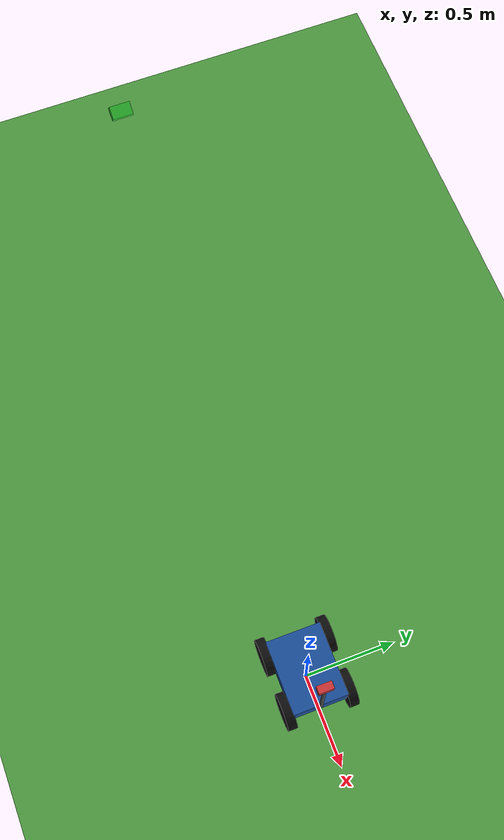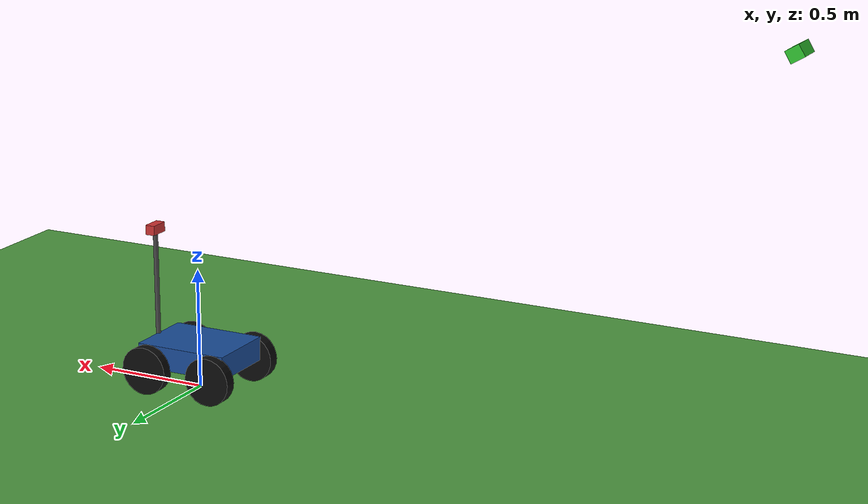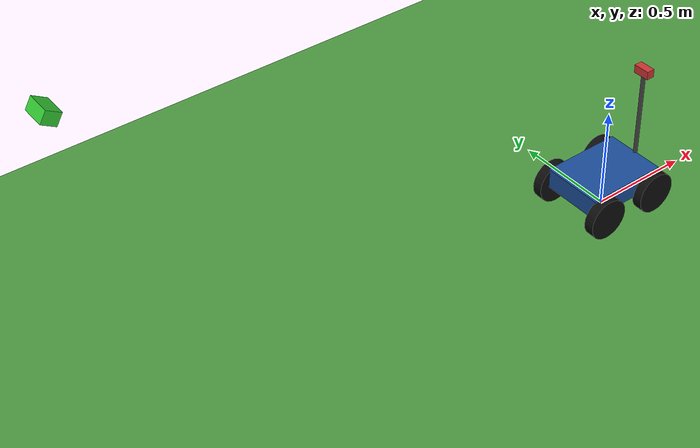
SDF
<?xml version="1.0" ?>
<sdf version="1.6">
  <world name="default">
    <gui>
      <camera name="user_camera">
        <pose>-5 0 1 0 0.2 0</pose>
      </camera>
    </gui>
    <physics type="ode">
      <ode>
        <solver>
          <type>quick</type>
          <iters>100</iters>
          <sor>1.0</sor>
        </solver>
        <constraints>
          <cfm>0.0</cfm>
          <erp>0.2</erp>
          <contact_max_correcting_vel>100.0</contact_max_correcting_vel>
          <contact_surface_layer>0.001</contact_surface_layer>
        </constraints>
      </ode>
      <real_time_update_rate>1000</real_time_update_rate>
    </physics>
    <gravity>0 0 -9.8</gravity>
    <include>
      <uri>model://sun</uri>
    </include>

    <model name="ground_plane">
      <static>true</static>
      <link name="link">
        <collision name="collision">
          <geometry>
            <plane>
              <normal>0 0 1</normal>
              <size>100 100</size>
            </plane>
          </geometry>
          <surface>
            <contact>
              <collide_bitmask>0xffff</collide_bitmask>
            </contact>
            <friction>
              <ode>
                <mu>100</mu>
                <mu2>50</mu2>
              </ode>
            </friction>
          </surface>
        </collision>
        <visual name="visual">
          <cast_shadows>false</cast_shadows>
          <geometry>
            <plane>
              <normal>0 0 1</normal>
              <size>100 100</size>
            </plane>
          </geometry>
          <material>
            <script>
              <uri>file://media/materials/scripts/gazebo.material</uri>
              <name>Gazebo/Grass</name>
            </script>
          </material>
        </visual>
      </link>
    </model>

    <model name="generic_rover_demo">
      <include>
        <uri>model://generic_rover</uri>
      </include>
    </model>

  </world>
</sdf>

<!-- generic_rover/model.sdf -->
<sdf version="1.6">
  <model name="generic_rover">

    <link name="base_link">
      <pose>0 0 0.15 0 0 0</pose>
      <inertial>
        <mass>5.0</mass>
        <inertia>
          <ixx>0.0417</ixx>
          <ixy>0</ixy>
          <ixz>0</ixz>
          <iyy>0.0708</iyy>
          <iyz>0</iyz>
          <izz>0.1042</izz>
        </inertia>
      </inertial>
      <collision name="base_collision">
        <geometry>
          <box>
            <size>0.4 0.3 0.1</size>
          </box>
        </geometry>
      </collision>
      <visual name="base_visual">
        <geometry>
          <box>
            <size>0.4 0.3 0.1</size>
          </box>
        </geometry>
        <material>
          <ambient>0.1 0.3 0.6 1</ambient>
          <diffuse>0.1 0.3 0.6 1</diffuse>
        </material>
      </visual>
      <!-- Camera mast (visual only) up to the camera_link offset. -->
      <visual name="camera_mast_visual">
        <pose>0.2 0 0.25 0 0 0</pose>
        <geometry>
          <cylinder>
            <radius>0.01</radius>
            <length>0.45</length>
          </cylinder>
        </geometry>
        <material>
          <ambient>0.3 0.3 0.3 1</ambient>
          <diffuse>0.3 0.3 0.3 1</diffuse>
        </material>
      </visual>
    </link>

    <link name="front_left_wheel">
      <pose>0.15 0.17 0.1 -1.5707963 0 0</pose>
      <inertial>
        <mass>0.5</mass>
        <inertia>
          <ixx>0.00135</ixx>
          <ixy>0</ixy>
          <ixz>0</ixz>
          <iyy>0.00135</iyy>
          <iyz>0</iyz>
          <izz>0.0025</izz>
        </inertia>
      </inertial>
      <collision name="front_left_wheel_collision">
        <geometry>
          <cylinder>
            <radius>0.1</radius>
            <length>0.05</length>
          </cylinder>
        </geometry>
        <surface>
          <friction>
            <ode>
              <mu>1.5</mu>
              <mu2>1.5</mu2>
            </ode>
          </friction>
        </surface>
      </collision>
      <visual name="front_left_wheel_visual">
        <geometry>
          <cylinder>
            <radius>0.1</radius>
            <length>0.05</length>
          </cylinder>
        </geometry>
        <material>
          <ambient>0.05 0.05 0.05 1</ambient>
          <diffuse>0.05 0.05 0.05 1</diffuse>
        </material>
      </visual>
    </link>

    <link name="front_right_wheel">
      <pose>0.15 -0.17 0.1 -1.5707963 0 0</pose>
      <inertial>
        <mass>0.5</mass>
        <inertia>
          <ixx>0.00135</ixx>
          <ixy>0</ixy>
          <ixz>0</ixz>
          <iyy>0.00135</iyy>
          <iyz>0</iyz>
          <izz>0.0025</izz>
        </inertia>
      </inertial>
      <collision name="front_right_wheel_collision">
        <geometry>
          <cylinder>
            <radius>0.1</radius>
            <length>0.05</length>
          </cylinder>
        </geometry>
        <surface>
          <friction>
            <ode>
              <mu>1.5</mu>
              <mu2>1.5</mu2>
            </ode>
          </friction>
        </surface>
      </collision>
      <visual name="front_right_wheel_visual">
        <geometry>
          <cylinder>
            <radius>0.1</radius>
            <length>0.05</length>
          </cylinder>
        </geometry>
        <material>
          <ambient>0.05 0.05 0.05 1</ambient>
          <diffuse>0.05 0.05 0.05 1</diffuse>
        </material>
      </visual>
    </link>

    <link name="rear_left_wheel">
      <pose>-0.15 0.17 0.1 -1.5707963 0 0</pose>
      <inertial>
        <mass>0.5</mass>
        <inertia>
          <ixx>0.00135</ixx>
          <ixy>0</ixy>
          <ixz>0</ixz>
          <iyy>0.00135</iyy>
          <iyz>0</iyz>
          <izz>0.0025</izz>
        </inertia>
      </inertial>
      <collision name="rear_left_wheel_collision">
        <geometry>
          <cylinder>
            <radius>0.1</radius>
            <length>0.05</length>
          </cylinder>
        </geometry>
        <surface>
          <friction>
            <ode>
              <mu>1.5</mu>
              <mu2>1.5</mu2>
            </ode>
          </friction>
        </surface>
      </collision>
      <visual name="rear_left_wheel_visual">
        <geometry>
          <cylinder>
            <radius>0.1</radius>
            <length>0.05</length>
          </cylinder>
        </geometry>
        <material>
          <ambient>0.05 0.05 0.05 1</ambient>
          <diffuse>0.05 0.05 0.05 1</diffuse>
        </material>
      </visual>
    </link>

    <link name="rear_right_wheel">
      <pose>-0.15 -0.17 0.1 -1.5707963 0 0</pose>
      <inertial>
        <mass>0.5</mass>
        <inertia>
          <ixx>0.00135</ixx>
          <ixy>0</ixy>
          <ixz>0</ixz>
          <iyy>0.00135</iyy>
          <iyz>0</iyz>
          <izz>0.0025</izz>
        </inertia>
      </inertial>
      <collision name="rear_right_wheel_collision">
        <geometry>
          <cylinder>
            <radius>0.1</radius>
            <length>0.05</length>
          </cylinder>
        </geometry>
        <surface>
          <friction>
            <ode>
              <mu>1.5</mu>
              <mu2>1.5</mu2>
            </ode>
          </friction>
        </surface>
      </collision>
      <visual name="rear_right_wheel_visual">
        <geometry>
          <cylinder>
            <radius>0.1</radius>
            <length>0.05</length>
          </cylinder>
        </geometry>
        <material>
          <ambient>0.05 0.05 0.05 1</ambient>
          <diffuse>0.05 0.05 0.05 1</diffuse>
        </material>
      </visual>
    </link>

    <joint name="front_left_wheel_joint" type="revolute">
      <parent>base_link</parent>
      <child>front_left_wheel</child>
      <axis>
        <xyz>0 1 0</xyz>
        <use_parent_model_frame>true</use_parent_model_frame>
      </axis>
    </joint>

    <joint name="front_right_wheel_joint" type="revolute">
      <parent>base_link</parent>
      <child>front_right_wheel</child>
      <axis>
        <xyz>0 1 0</xyz>
        <use_parent_model_frame>true</use_parent_model_frame>
      </axis>
    </joint>

    <joint name="rear_left_wheel_joint" type="revolute">
      <parent>base_link</parent>
      <child>rear_left_wheel</child>
      <axis>
        <xyz>0 1 0</xyz>
        <use_parent_model_frame>true</use_parent_model_frame>
      </axis>
    </joint>

    <joint name="rear_right_wheel_joint" type="revolute">
      <parent>base_link</parent>
      <child>rear_right_wheel</child>
      <axis>
        <xyz>0 1 0</xyz>
        <use_parent_model_frame>true</use_parent_model_frame>
      </axis>
    </joint>

    <!-- Camera at (0.2, 0.0, 0.5) relative to base_link per the plan doc's
         Step 1.1 spec (base_link origin is at z = 0.15 in the model frame,
         so the link pose below is 0.15 + 0.5). -->
    <link name="camera_link">
      <pose>0.2 0 0.65 0 0 0</pose>
      <inertial>
        <mass>0.05</mass>
        <inertia>
          <ixx>0.00001</ixx>
          <ixy>0</ixy>
          <ixz>0</ixz>
          <iyy>0.00001</iyy>
          <iyz>0</iyz>
          <izz>0.00001</izz>
        </inertia>
      </inertial>
      <visual name="camera_visual">
        <geometry>
          <box>
            <size>0.04 0.08 0.04</size>
          </box>
        </geometry>
        <material>
          <ambient>0.8 0.2 0.2 1</ambient>
          <diffuse>0.8 0.2 0.2 1</diffuse>
        </material>
      </visual>
      <sensor type="camera" name="rover_camera_sensor">
        <update_rate>15.0</update_rate>
        <always_on>true</always_on>
        <visualize>false</visualize>
        <camera name="rover_camera">
          <horizontal_fov>1.3962634</horizontal_fov>
          <image>
            <width>640</width>
            <height>480</height>
            <format>R8G8B8</format>
          </image>
          <clip>
            <near>0.05</near>
            <far>100.0</far>
          </clip>
        </camera>
        <plugin name="camera_controller" filename="libgazebo_ros_camera.so">
          <robotNamespace>/</robotNamespace>
          <cameraName>rover/camera</cameraName>
          <imageTopicName>image_raw</imageTopicName>
          <cameraInfoTopicName>camera_info</cameraInfoTopicName>
          <frameName>camera_link</frameName>
        </plugin>
      </sensor>
    </link>

    <joint name="camera_joint" type="fixed">
      <parent>base_link</parent>
      <child>camera_link</child>
    </joint>

    <link name="camera_link_chase">
      <pose>-2.5 0 1.65 0 0.5404195 0</pose>
      <inertial>
        <mass>0.05</mass>
        <inertia>
          <ixx>0.00001</ixx>
          <ixy>0</ixy>
          <ixz>0</ixz>
          <iyy>0.00001</iyy>
          <iyz>0</iyz>
          <izz>0.00001</izz>
        </inertia>
      </inertial>
      <visual name="camera_chase_visual">
        <geometry>
          <box>
            <size>0.06 0.1 0.05</size>
          </box>
        </geometry>
        <material>
          <ambient>0.2 0.8 0.2 1</ambient>
          <diffuse>0.2 0.8 0.2 1</diffuse>
        </material>
      </visual>
      <sensor type="camera" name="rover_camera_chase_sensor">
        <update_rate>15.0</update_rate>
        <always_on>true</always_on>
        <visualize>false</visualize>
        <camera name="rover_camera_chase">
          <horizontal_fov>1.3962634</horizontal_fov>
          <image>
            <width>640</width>
            <height>480</height>
            <format>R8G8B8</format>
          </image>
          <clip>
            <near>0.05</near>
            <far>100.0</far>
          </clip>
        </camera>
        <plugin name="camera_chase_controller" filename="libgazebo_ros_camera.so">
          <robotNamespace>/</robotNamespace>
          <cameraName>rover/camera_chase</cameraName>
          <imageTopicName>image_raw</imageTopicName>
          <cameraInfoTopicName>camera_info</cameraInfoTopicName>
          <frameName>camera_link_chase</frameName>
        </plugin>
      </sensor>
    </link>

    <joint name="camera_joint_chase" type="fixed">
      <parent>base_link</parent>
      <child>camera_link_chase</child>
    </joint>

    <plugin name="diff_drive_controller" filename="libgazebo_ros_diff_drive.so">
      <robotNamespace>/rover</robotNamespace>
      <commandTopic>cmd_vel</commandTopic>
      <odometryTopic>odom</odometryTopic>
      <odometryFrame>odom</odometryFrame>
      <odometrySource>world</odometrySource>
      <robotBaseFrame>base_link</robotBaseFrame>
      <leftJoint>front_left_wheel_joint</leftJoint>
      <leftJoint>rear_left_wheel_joint</leftJoint>
      <rightJoint>front_right_wheel_joint</rightJoint>
      <rightJoint>rear_right_wheel_joint</rightJoint>
      <wheelSeparation>0.34</wheelSeparation>
      <wheelDiameter>0.2</wheelDiameter>
      <wheelTorque>25.0</wheelTorque>
      <wheelAcceleration>0.0</wheelAcceleration>
      <updateRate>30.0</updateRate>
      <publishOdomTF>true</publishOdomTF>
      <publishWheelTF>false</publishWheelTF>
      <publishWheelJointState>false</publishWheelJointState>
      <legacyMode>false</legacyMode>
    </plugin>

  </model>
</sdf>
